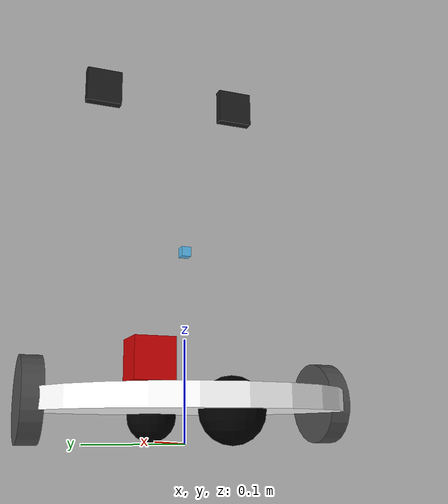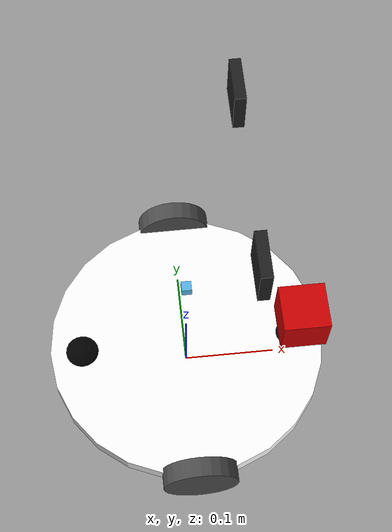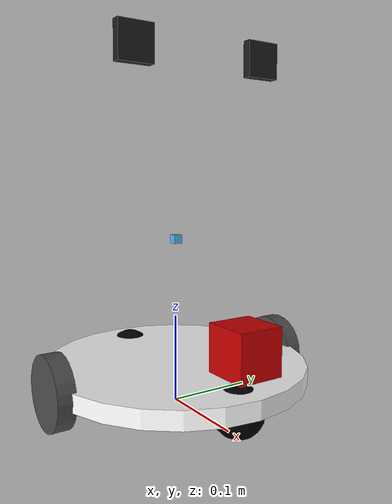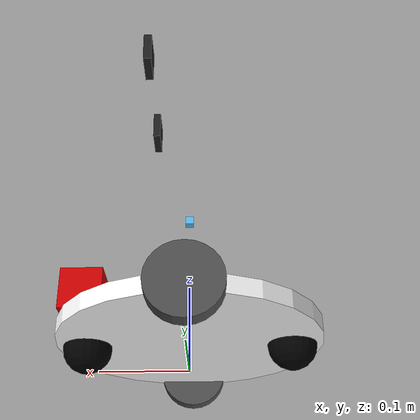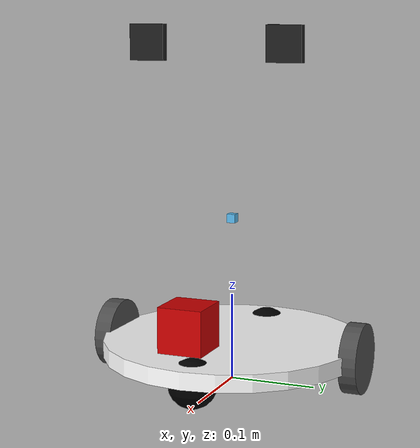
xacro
<?xml version="1.0"?>
<robot name="differential_wheeled_robot" xmlns:xacro="http://www.ros.org/wiki/xacro">

  <xacro:arg name="gpu" default="true"/>
  <xacro:property name="gpu" value="$(arg gpu)" />

  <xacro:include filename="$(find cartographer_ros)/urdf/wheel.urdf.xacro" />

<!-- Defining the colors used in this robot -->
  <material name="Black">
    <color rgba="0.0 0.0 0.0 1.0"/>
  </material>

  <material name="Red">
    <color rgba="0.8 0.0 0.0 1.0"/>
  </material>

  <material name="White">
    <color rgba="1.0 1.0 1.0 1.0"/>
  </material>

  <material name="Blue">
    <color rgba="0.0 0.0 0.8 1.0"/>
  </material>

  <!-- PROPERTY LIST -->
  <!--All units in m-kg-s-radians unit system -->
  <property name="M_PI" value="3.1415926535897931" />
  <property name="M_PI_2" value="1.570796327" />
  <property name="DEG_TO_RAD" value="0.017453293" />

  <!-- Main body radius and height -->
  <!-- Main Body Cylinder base   -->
  <property name="base_height" value="0.02" />
  <property name="base_radius" value="0.15" />
  <property name="base_mass" value="5" /> <!-- in kg-->

  <!-- caster wheel radius and height -->
  <!-- caster wheel mass -->
  <property name="caster_f_height" value="0.04" />
  <property name="caster_f_radius" value="0.0278" />
  <property name="caster_f_mass" value="0.5" /> <!-- in kg-->

  <!-- caster wheel radius and height -->
  <!-- caster wheel mass -->
  <property name="caster_b_height" value="0.04" />
  <property name="caster_b_radius" value="0.0278" />
  <property name="caster_b_mass" value="0.5" /> <!-- in kg-->

  <!-- Wheels -->

  <property name="wheel_mass" value="2.5" /> --> <!-- in kg-->

  <property name="base_x_origin_to_wheel_origin" value="0.25" />
  <property name="base_y_origin_to_wheel_origin" value="0.3" />
  <property name="base_z_origin_to_wheel_origin" value="0.0" />

  <!-- Hokuyo Laser scanner -->
  <property name="hokuyo_size" value="0.05" />

  <!-- Macro for calculating inertia of cylinder -->
  <macro name="cylinder_inertia" params="m r h">
    <inertia  ixx="${m*(3*r*r+h*h)/12}" ixy = "0" ixz = "0"
              iyy="${m*(3*r*r+h*h)/12}" iyz = "0"
              izz="${m*r*r/2}" />
  </macro>

  <!-- BASE-FOOTPRINT -->
  <!-- base_footprint is a fictitious link(frame) that is on the ground right below base_link origin -->
  <link name="base_footprint">
    <visual>
        <origin xyz="0 0 0" rpy="0 0 0" />
        <geometry>
            <box size="0.001 0.001 0.001" />
        </geometry>
    </visual>
  </link>

  <joint name="base_footprint_joint" type="fixed">
    <origin xyz="0 0 ${wheel_radius - base_z_origin_to_wheel_origin}" rpy="0 0 0" />
    <parent link="base_footprint"/>
    <child link="base_link" />
  </joint>

  <!-- BASE-LINK -->
  <!--Actual body/chassis of the robot-->
  <link name="base_link">
    <visual>
      <origin xyz="0 0 0" rpy="0 0 0" />
      <geometry>
          <cylinder length="${base_height}" radius="${base_radius}" />
      </geometry>
      <material name="White" />
    </visual>
  </link>

<!--Caster front  -->

    <link name="caster_front_link">
    <visual>
      <origin xyz="0 0.02 0" rpy="${M_PI/2} 0 0" />
      <geometry>
	<sphere radius="${caster_f_radius}" />
      </geometry>
      <material name="Black" />
    </visual>

    </link>

 <joint name="caster_front_joint" type="fixed">
      <parent link="base_link"/>
      <child link="caster_front_link"/>
      <origin xyz="0.115 0.0 0.007" rpy="${-M_PI/2} 0 0"/>
    </joint>

<!--Caster back  -->

    <link name="caster_back_link">

    <visual>
      <origin xyz="0.02 0.02 0 " rpy="${M_PI/2} 0 0" />

      <geometry>

	<sphere radius="${caster_b_radius}" />

      </geometry>
      <material name="Black" />
    </visual>

    </link>

    <joint name="caster_back_joint" type="fixed">
      <parent link="base_link"/>
      <child link="caster_back_link"/>
      <origin xyz="-0.135 0.0 0.009" rpy="${-M_PI/2} 0 0"/>
    </joint>

<!-- Wheel Definitions -->

  <wheel fb="front" lr="right" parent="base_link" translateX="0" translateY="-0.5" flipY="1"/>
  <wheel fb="front" lr="left" parent="base_link" translateX="0" translateY="0.5" flipY="1"/>

  <!-- SENSORS -->

  <!-- hokuyo -->

  <link name="hokuyo_link">
    <visual>
      <origin xyz="0 0 0" rpy="0 0 0" />
      <geometry>
        <box size="${hokuyo_size} ${hokuyo_size} ${hokuyo_size}"/>
      </geometry>
      <material name="Red" />
    </visual>
  </link>
  <joint name="hokuyo_joint" type="fixed">
    <origin xyz="${base_radius - hokuyo_size/2} 0 ${base_height+hokuyo_size/4+0.02}" rpy="0 0 0" />
    <parent link="base_link"/>
    <child link="hokuyo_link" />
  </joint>
  <property name="deg_to_rad" value="0.01745329251994329577"/>

  <!-- Define RGB-D sensor -->

  <xacro:include filename="$(find cartographer_ros)/urdf/sensors/camera1.xacro"/>
    <xacro:property name="camera1_offset_x" value="0.05" />
    <xacro:property name="camera1_offset_y" value="0.08" />
    <xacro:property name="camera1_offset_z" value="0.35" />

    <!-- Camera1 -->
    <joint name="camera1_joint" type="fixed">
        <origin xyz="${camera1_offset_x} ${camera1_offset_y} ${camera1_offset_z}" rpy="0 0 0" />
        <parent link="base_link"/>
        <child link="camera1_link"/>
    </joint>

    <xacro:usb_camera prefix="camera1"/>

  <xacro:include filename="$(find cartographer_ros)/urdf/sensors/camera2.xacro"/>
    <xacro:property name="camera2_offset_x" value="0.05" />
    <xacro:property name="camera2_offset_y" value="-0.08" />
    <xacro:property name="camera2_offset_z" value="0.35" />

    <!-- Camera2 -->
    <joint name="camera2_joint" type="fixed">
        <origin xyz="${camera2_offset_x} ${camera2_offset_y} ${camera2_offset_z}" rpy="0 0 0" />
        <parent link="base_link"/>
        <child link="camera2_link"/>
    </joint>

    <xacro:usb_camera prefix="camera2"/>

    <!-- imu1 -->

<link name="imu_link">
        <visual>
        <origin xyz="0 0 0" rpy="0 0 0" />
        <geometry>
            <box size = "0.01 0.01 0.01"/>
                </geometry>
        </visual>
</link>

<joint name="imu_joint" type="fixed">
    <axis xyz="0 0 0"/>
    <origin xyz="0.0 0 0" rpy="0 0 0" />
    <parent link="velodyne"/>
    <child link="imu_link" />
</joint>

    <!-- Kinect -->

  <xacro:include filename="$(find cartographer_ros)/urdf/sensors/VLP-16.urdf.xacro"/>
  <!-- Define VLP-16 sensor -->
  <VLP-16 parent="base_link" name="velodyne" topic="/velodyne_points" hz="10" samples="1800" gpu="${gpu}">
    <origin xyz="0 0 0.15" rpy="0 0 0" />
  </VLP-16>

  <!-- Differential drive controller  -->

</robot>

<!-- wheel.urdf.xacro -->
<robot name="wheel" xmlns:xacro="http://www.ros.org/wiki/xacro">

  <!-- Wheels -->
  <property name="wheel_radius" value="0.04" />
  <property name="wheel_height" value="0.02" />
  <property name="wheel_mass" value="2.5" /> <!-- in kg-->

  <property name="base_x_origin_to_wheel_origin" value="0.25" />
  <property name="base_y_origin_to_wheel_origin" value="0.3" />
  <property name="base_z_origin_to_wheel_origin" value="0.0" />

  <macro name="cylinder_inertia" params="m r h">
    <inertia  ixx="${m*(3*r*r+h*h)/12}" ixy = "0" ixz = "0"
              iyy="${m*(3*r*r+h*h)/12}" iyz = "0"
              izz="${m*r*r/2}" />
  </macro>

  <xacro:macro name="wheel" params="fb lr parent translateX translateY flipY"> <!--fb : front, back ; lr: left, right -->
    <link name="${fb}_${lr}_wheel">
      <visual>
        <origin xyz="0 0 0" rpy="${flipY*M_PI/2} 0  0 " />
        <geometry>
          <cylinder length="${wheel_height}" radius="${wheel_radius}" />
        </geometry>
        <material name="DarkGray" />
      </visual>
    </link>

    <joint name="${fb}_${lr}_wheel_joint" type="continuous">
      <parent link="${parent}"/>
      <child link="${fb}_${lr}_wheel"/>
      <origin xyz="${translateX * base_x_origin_to_wheel_origin} ${translateY * base_y_origin_to_wheel_origin} ${base_z_origin_to_wheel_origin}" rpy="0 0 0" />
      <axis xyz="0 1 0" rpy="0  0" />
    </joint>

    <!-- Transmission is important to link the joints and the controller -->

  </xacro:macro>
</robot>

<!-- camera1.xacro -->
<robot xmlns:xacro="http://www.ros.org/wiki/xacro" name="camera1">

    <xacro:macro name="usb_camera" params="prefix:=camera1">
        <!-- Create laser reference frame -->
        <link name="${prefix}_link">
            <inertial>
                <mass value="0.001" />
                <origin xyz="0 0 0" />
                <inertia ixx="0.0001" ixy="0.0" ixz="0.0"
                         iyy="0.0001" iyz="0.0"
                         izz="0.0001" />
            </inertial>

            <visual>
                <origin xyz=" 0 0 0 " rpy="0 0 0" />
                <geometry>
                    <box size="0.01 0.04 0.04" />
                </geometry>
                <material name="black"/>
            </visual>

            <collision>
                <origin xyz="0.0 0.0 0.0" rpy="0 0 0" />
                <geometry>
                    <box size="0.01 0.04 0.04" />
                </geometry>
            </collision>
        </link>
        <gazebo reference="${prefix}_link">
            <material>Gazebo/Black</material>
        </gazebo>

        <gazebo reference="${prefix}_link">
            <sensor type="camera" name="camera1_node">
                <update_rate>30.0</update_rate>
                <camera name="head1">
                    <horizontal_fov>1.3962634</horizontal_fov>
                    <image>
                        <width>1280</width>
                        <height>720</height>
                        <format>R8G8B8</format>
                    </image>
                    <clip>
                        <near>0.02</near>
                        <far>300</far>
                    </clip>
                    <noise>
                        <type>gaussian</type>
                        <mean>0.0</mean>
                        <stddev>0.007</stddev>
                    </noise>
                </camera>
                <plugin name="gazebo_camera1" filename="libgazebo_ros_camera.so">
                    <alwaysOn>true</alwaysOn>
                    <updateRate>0.0</updateRate>
                    <cameraName>/camera1</cameraName>
                    <imageTopicName>image_raw1</imageTopicName>
                    <cameraInfoTopicName>camera_info1</cameraInfoTopicName>
                    <frameName>camera1_link</frameName>
                    <hackBaseline>0.07</hackBaseline>
                    <distortionK1>0.0</distortionK1>
                    <distortionK2>0.0</distortionK2>
                    <distortionK3>0.0</distortionK3>
                    <distortionT1>0.0</distortionT1>
                    <distortionT2>0.0</distortionT2>
                </plugin>
            </sensor>
        </gazebo>

    </xacro:macro>
</robot>

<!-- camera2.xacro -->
<robot xmlns:xacro="http://www.ros.org/wiki/xacro" name="camera2">

    <xacro:macro name="usb_camera" params="prefix:=camera2">
        <!-- Create laser reference frame -->
        <link name="${prefix}_link">
            <inertial>
                <mass value="0.001" />
                <origin xyz="0 0 0" />
                <inertia ixx="0.0001" ixy="0.0" ixz="0.0"
                         iyy="0.0001" iyz="0.0"
                         izz="0.0001" />
            </inertial>

            <visual>
                <origin xyz=" 0 0 0 " rpy="0 0 0" />
                <geometry>
                    <box size="0.01 0.04 0.04" />
                </geometry>
                <material name="black"/>
            </visual>

            <collision>
                <origin xyz="0.0 0.0 0.0" rpy="0 0 0" />
                <geometry>
                    <box size="0.01 0.04 0.04" />
                </geometry>
            </collision>
        </link>
        <gazebo reference="${prefix}_link">
            <material>Gazebo/Black</material>
        </gazebo>

        <gazebo reference="${prefix}_link">
            <sensor type="camera" name="camera2_node">
                <update_rate>30.0</update_rate>
                <camera name="head2">
                    <horizontal_fov>1.3962634</horizontal_fov>
                    <image>
                        <width>1280</width>
                        <height>720</height>
                        <format>R8G8B8</format>
                    </image>
                    <clip>
                        <near>0.02</near>
                        <far>300</far>
                    </clip>
                    <noise>
                        <type>gaussian</type>
                        <mean>0.0</mean>
                        <stddev>0.007</stddev>
                    </noise>
                </camera>
                <plugin name="gazebo_camera2" filename="libgazebo_ros_camera.so">
                    <alwaysOn>true</alwaysOn>
                    <updateRate>0.0</updateRate>
                    <cameraName>/camera2</cameraName>
                    <imageTopicName>image_raw2</imageTopicName>
                    <cameraInfoTopicName>camera_info2</cameraInfoTopicName>
                    <frameName>camera2_link</frameName>
                    <hackBaseline>0.07</hackBaseline>
                    <distortionK1>0.0</distortionK1>
                    <distortionK2>0.0</distortionK2>
                    <distortionK3>0.0</distortionK3>
                    <distortionT1>0.0</distortionT1>
                    <distortionT2>0.0</distortionT2>
                </plugin>
            </sensor>
        </gazebo>

    </xacro:macro>
</robot>

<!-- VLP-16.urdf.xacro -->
<robot xmlns:xacro="http://www.ros.org/wiki/xacro" name="VLP-16">
  <xacro:property name="M_PI" value="3.1415926535897931" />
  <xacro:macro name="VLP-16" params="*origin parent:=base_link name:=velodyne topic:=/velodyne_points hz:=10 lasers:=16 samples:=1800 collision_range:=0.3 min_range:=0.9 max_range:=130.0 noise:=0.008 min_angle:=-${M_PI} max_angle:=${M_PI} gpu:=false">

    <joint name="${name}_base_mount_joint" type="fixed">
      <xacro:insert_block name="origin" />
      <parent link="${parent}"/>
      <child link="${name}"/>
    </joint>

    <link name="${name}">
      <inertial>
        <mass value="0.0083"/>
        <origin xyz="0 0 0.03585"/>
        <inertia ixx="${(0.0083 * (3.0*0.0516*0.0516 + 0.0717*0.0717)) / 12.0}" ixy="0" ixz="0"
          iyy="${(0.0083 * (3.0*0.0516*0.0516 + 0.0717*0.0717)) / 12.0}" iyz="0"
          izz="${0.5 * 0.0083 * (0.0516*0.0516)}"/>
      </inertial>
      <collision>
        <origin rpy="0 0 0" xyz="0 0 0.03585"/>
        <geometry>
          <cylinder radius="0.0516" length="0.0717"/>
        </geometry>
      </collision>
    </link>

    <!-- Gazebo requires the velodyne_gazebo_plugins package -->
    <gazebo reference="${name}">
      <xacro:if value="${gpu}">
        <sensor type="gpu_ray" name="${name}-VLP16">
          <pose>0 0 0 0 0 0</pose>
          <visualize>false</visualize>
          <update_rate>${hz}</update_rate>
          <ray>
            <scan>
              <horizontal>
                <samples>${samples}</samples>
                <resolution>1</resolution>
                <min_angle>${min_angle}</min_angle>
                <max_angle>${max_angle}</max_angle>
              </horizontal>
              <vertical>
                <samples>${lasers}</samples>
                <resolution>1</resolution>
                <min_angle>-${15.0*M_PI/180.0}</min_angle>
                <max_angle> ${15.0*M_PI/180.0}</max_angle>
              </vertical>
            </scan>
            <range>
              <min>${collision_range}</min>
              <max>${max_range+1}</max>
              <resolution>0.001</resolution>
            </range>
            <noise>
              <type>gaussian</type>
              <mean>0.0</mean>
              <stddev>0.0</stddev>
            </noise>
          </ray>
          <plugin name="gazebo_ros_laser_controller" filename="libgazebo_ros_velodyne_gpu_laser.so">
            <topicName>${topic}</topicName>
            <frameName>${name}</frameName>
            <min_range>${min_range}</min_range>
            <max_range>${max_range}</max_range>
            <gaussianNoise>${noise}</gaussianNoise>
          </plugin>
        </sensor>
      </xacro:if>
      <xacro:unless value="${gpu}">
        <sensor type="ray" name="${name}-VLP16">
          <pose>0 0 0 0 0 0</pose>
          <visualize>false</visualize>
          <update_rate>${hz}</update_rate>
          <ray>
            <scan>
              <horizontal>
                <samples>${samples}</samples>
                <resolution>1</resolution>
                <min_angle>${min_angle}</min_angle>
                <max_angle>${max_angle}</max_angle>
              </horizontal>
              <vertical>
                <samples>${lasers}</samples>
                <resolution>1</resolution>
                <min_angle>-${15.0*M_PI/180.0}</min_angle>
                <max_angle> ${15.0*M_PI/180.0}</max_angle>
              </vertical>
            </scan>
            <range>
              <min>${collision_range}</min>
              <max>${max_range+1}</max>
              <resolution>0.001</resolution>
            </range>
            <noise>
              <type>gaussian</type>
              <mean>0.0</mean>
              <stddev>0.0</stddev>
            </noise>
          </ray>
          <plugin name="gazebo_ros_laser_controller" filename="libgazebo_ros_velodyne_laser.so">
            <topicName>${topic}</topicName>
            <frameName>${name}</frameName>
            <min_range>${min_range}</min_range>
            <max_range>${max_range}</max_range>
            <gaussianNoise>${noise}</gaussianNoise>
          </plugin>
        </sensor>
      </xacro:unless>
    </gazebo>

  </xacro:macro>
</robot>
